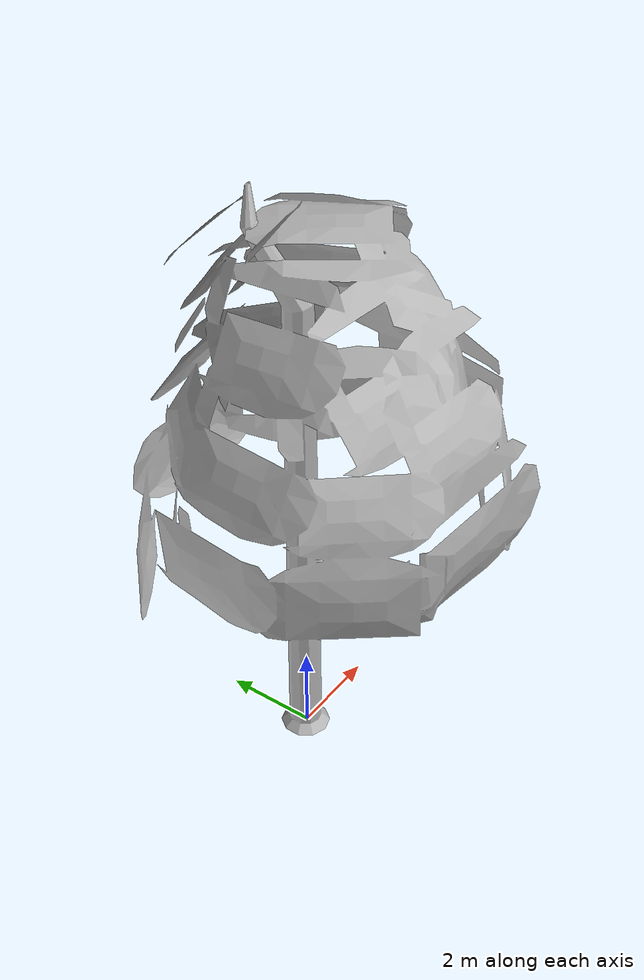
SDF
<?xml version='1.0'?>
<sdf version='1.4'>
  <model name="Tree_5">
    <static>true</static>
    <pose>0 0 0 0 0 0</pose>

    <link name="tree">
      <visual name="tree_visual">
        <geometry>
          <mesh>
            <uri>model://Tree_5/Tree.dae</uri>
            <scale>1.5 1.5 1.5</scale>
          </mesh>
        </geometry>
      </visual>
      <collision name="tree_collision">
        <geometry>
          <mesh>
            <uri>model://Tree_5/Tree.dae</uri>
            <scale>1.5 1.5 1.5</scale>
          </mesh>
        </geometry>
      </collision>
    </link>

  </model>

</sdf>
